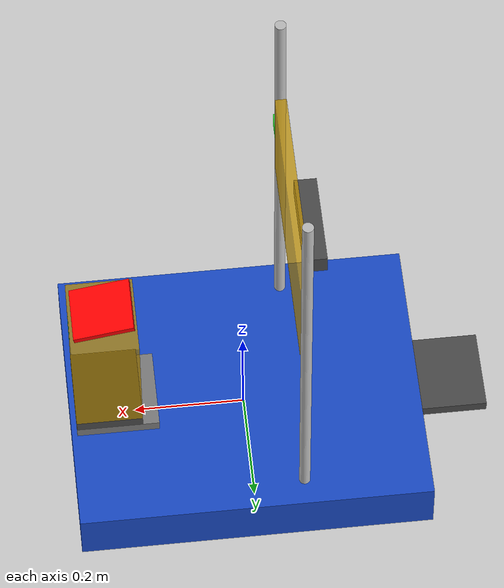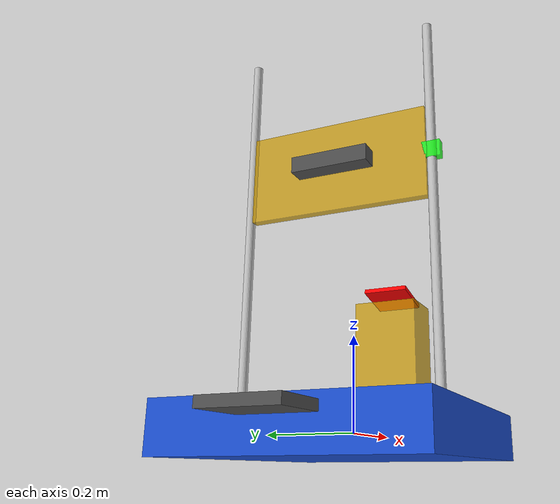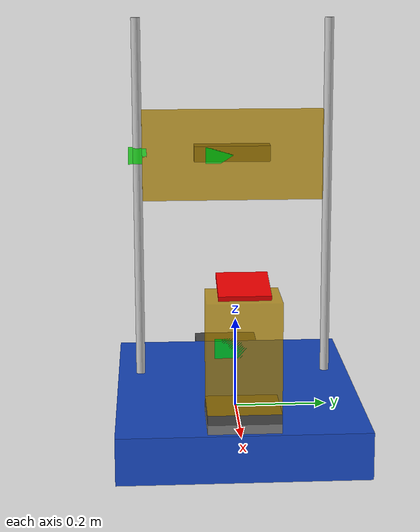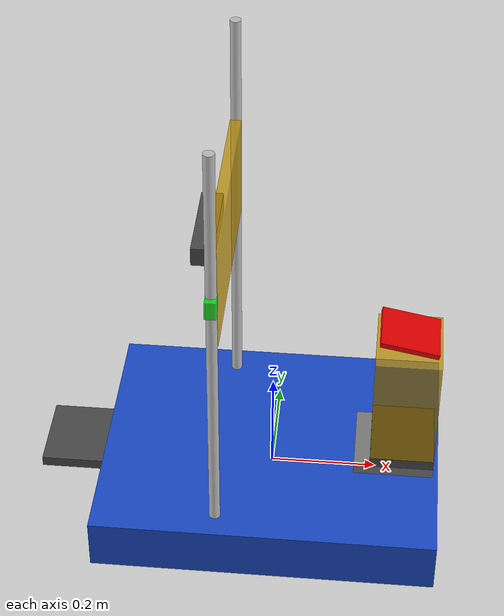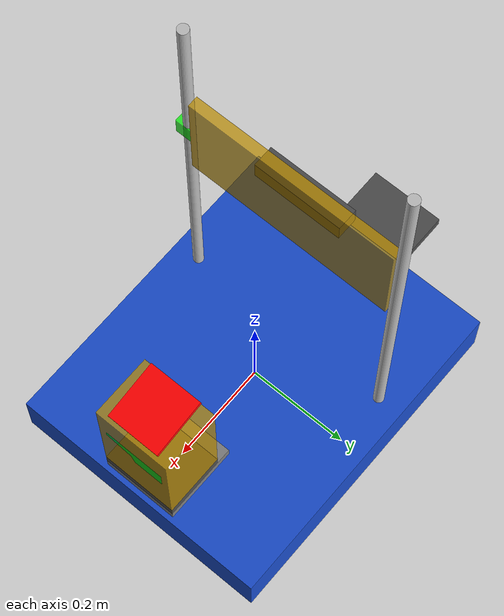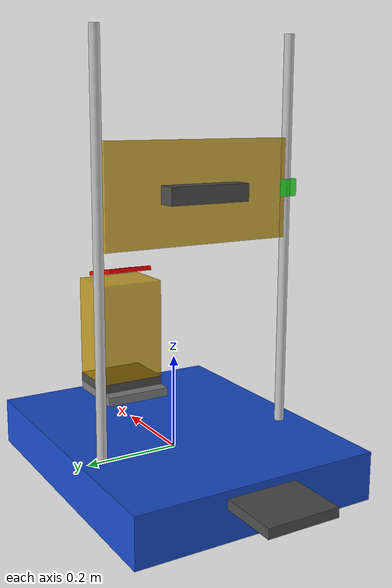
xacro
<?xml version="1.0"?>
<robot name="multi_sensor_robot" xmlns:xacro="http://www.ros.org/wiki/xacro">

  <!-- MAIN ROBOT BASE                 -->

  <link name="base_link">
    <visual>
      <geometry>
        <box size="0.64 0.52 0.1"/>
      </geometry>
      <material name="blue">
        <color rgba="0.1 0.3 0.8 1.0"/>
      </material>
    </visual>
  </link>

  <!-- FRONT MOUNTING STACK            -->

  <link name="robot_base_front_mount">
    <visual>
      <geometry>
        <box size="0.15 0.15 0.02"/>
      </geometry>
      <material name="gray">
        <color rgba="0.5 0.5 0.5 1.0"/>
      </material>
    </visual>
  </link>

  <joint name="robot_base_front_mount_joint" type="fixed">
    <parent link="base_link"/>
    <child link="robot_base_front_mount"/>
    <origin xyz="0.235 0.0 0.06" rpy="0 0 0"/>
  </joint>

  <link name="module_base_mount">
    <visual>
      <geometry>
        <box size="0.12 0.15 0.02"/>
      </geometry>
      <material name="dark_gray">
        <color rgba="0.3 0.3 0.3 1.0"/>
      </material>
    </visual>
  </link>

  <!-- CHANGE HERE FOR AUTONOMY MODULE -->

  <xacro:arg name="module_position_front" default="true"/>
  <xacro:arg name="module_position_back" default="false"/>

  <!-- FRONT MOUNT -->
  <xacro:if value="${'$(arg module_position_front)' == 'true'}">
    <joint name="module_base_mount_joint" type="fixed">
      <parent link="robot_base_front_mount"/>
      <child link="module_base_mount"/>
      <origin xyz="0.015 0.0 0.02" rpy="0 0 0"/>
    </joint>
  </xacro:if>

  <!-- xxxxxxxxxxxxxxxxxxxxxxxxxxxxxxx -->

  <link name="robot_base_back_mount">
    <visual>
      <geometry>
        <box size="0.12 0.15 0.02"/>
      </geometry>
      <material name="dark_gray">
        <color rgba="0.3 0.3 0.3 1.0"/>
      </material>
    </visual>
  </link>

  <joint name="robot_base_back_mount_joint" type="fixed">
    <parent link="base_link"/>
    <child link="robot_base_back_mount"/>
    <origin xyz="-0.38 0.0 0.025" rpy="0 0 0"/>
  </joint>

  <!-- BACK MOUNT -->
  <xacro:if value="${'$(arg module_position_back)' == 'true'}">
    <joint name="module_base_mount_joint" type="fixed">
      <parent link="robot_base_back_mount"/>
      <child link="module_base_mount"/>
      <origin xyz="0.00 0.0 0.02" rpy="0 0 3.14159265"/>
    </joint>
  </xacro:if>

  <link name="module_base">
    <visual>
      <geometry>
        <box size="0.12 0.15 0.23"/>
      </geometry>
      <material name="yellow">
        <color rgba="0.8 0.6 0.0 0.75"/>
      </material>
    </visual>
  </link>

  <joint name="module_base_joint" type="fixed">
    <parent link="module_base_mount"/>
    <child link="module_base"/>
    <origin xyz="0.0 0.0 0.125" rpy="0 0 0"/>
  </joint>

  <!-- ======= FRONT SENSORS ======= -->

  <link name="sensor_mount_00_link">
    <visual>
      <geometry>
        <box size="0.11 0.105 0.01"/>
      </geometry>
      <material name="red">
        <color rgba="1.0 0.0 0.0 1.0"/>
      </material>
    </visual>
  </link>

  <joint name="sensor_mount_00_joint" type="fixed">
    <parent link="module_base"/>
    <child link="sensor_mount_00_link"/>
    <origin xyz="0.0 0.0 0.135" rpy="0 0.2 0"/>
  </joint>

  <link name="sensor_mount_01_link">
    <visual>
      <geometry>
        <box size="0.02 0.12 0.04"/>
      </geometry>
      <material name="green">
        <color rgba="0.0 1.0 0.0 0.75"/>
      </material>
    </visual>
  </link>

  <joint name="sensor_mount_01_joint" type="fixed">
    <parent link="module_base"/>
    <child link="sensor_mount_01_link"/>
    <origin xyz="0.050 0.0 0.025" rpy="0 0 0"/>
  </joint>

  <!-- MAST / POLES MOUNTING STACK     -->

  <!-- ======= POLES ======= -->
  <link name="pole_left_link">
    <visual>
      <geometry>
        <cylinder radius="0.01" length="0.8"/>
      </geometry>
      <material name="silver">
        <color rgba="0.75 0.75 0.75 1.0"/>
      </material>
    </visual>
  </link>

  <joint name="pole_left_joint" type="fixed">
    <parent link="base_link"/>
    <child link="pole_left_link"/>
    <origin xyz="-0.09 0.21 0.45" rpy="0 0 0"/>
  </joint>

  <link name="pole_right_link">
    <visual>
      <geometry>
        <cylinder radius="0.01" length="0.8"/>
      </geometry>
      <material name="silver">
        <color rgba="0.75 0.75 0.75 1.0"/>
      </material>
    </visual>
  </link>

  <joint name="pole_right_joint" type="fixed">
    <parent link="base_link"/>
    <child link="pole_right_link"/>
    <origin xyz="-0.09 -0.21 0.45" rpy="0 0 0"/>
  </joint>

  <!-- ======= MAST ATTACHMENTS ======= -->
  <link name="pole_cross_mount_link">
    <visual>
      <geometry>
        <box size="0.02 0.40 0.20"/>
      </geometry>
      <material name="yellow">
        <color rgba="0.8 0.6 0.0 0.75"/>
      </material>
    </visual>
  </link>

  <joint name="pole_cross_mount_joint" type="fixed">
    <parent link="base_link"/>
    <child link="pole_cross_mount_link"/>
    <origin xyz="-0.09 0.0 0.55" rpy="0 0 0"/>
  </joint>

  <!-- ======= MAST SENSORS ======= -->
  <link name="sensor_mount_02_link">
    <visual>
      <geometry>
        <box size="0.02 0.12 0.035"/>
      </geometry>
      <material name="green">
        <color rgba="0.0 1.0 0.0 0.75"/>
      </material>
    </visual>
  </link>

  <joint name="sensor_mount_02_joint" type="fixed">
    <parent link="pole_cross_mount_link"/>
    <child link="sensor_mount_02_link"/>
    <origin xyz="0.0 0.0 0.0" rpy="0 0 0"/>
  </joint>

  <link name="cross_center_plate_link">
    <visual>
      <geometry>
        <box size="0.04 0.17 0.035"/>
      </geometry>
      <material name="dark_gray">
        <color rgba="0.3 0.3 0.3 1.0"/>
      </material>
    </visual>
  </link>

  <joint name="cross_center_plate_joint" type="fixed">
    <parent link="sensor_mount_02_link"/>
    <child link="cross_center_plate_link"/>
    <origin xyz="-0.03 0.0 0.0" rpy="0 0 0"/>
  </joint>

  <!-- ======= MAST SENSORS ======= -->

  <link name="sensor_mount_03_link">
    <visual>
      <geometry>
        <box size="0.02 0.04 0.035"/>
      </geometry>
      <material name="green">
        <color rgba="0.0 1.0 0.0 0.75"/>
      </material>
    </visual>
  </link>

  <joint name="sensor_mount_03_joint" type="fixed">
    <parent link="pole_right_link"/>
    <child link="sensor_mount_03_link"/>
    <origin xyz="0.0 0.0 0.10" rpy="0 0 0"/>
  </joint>

</robot>
